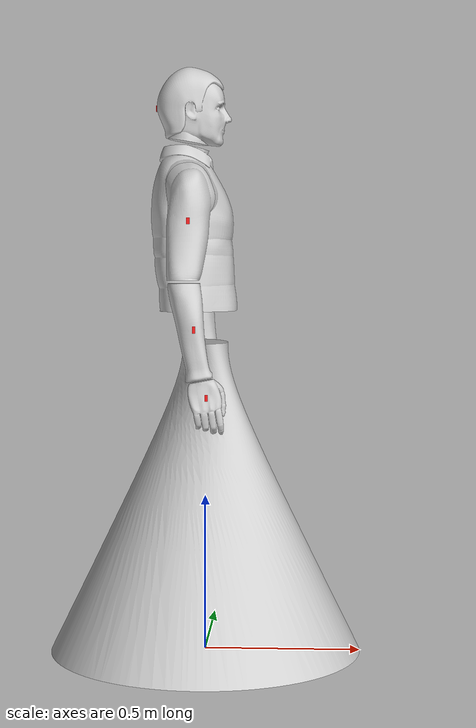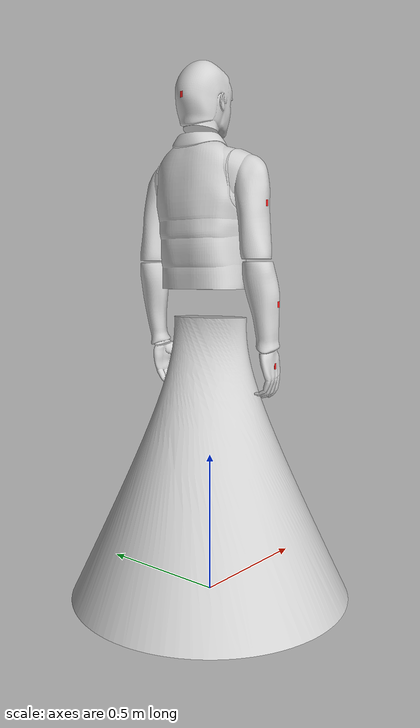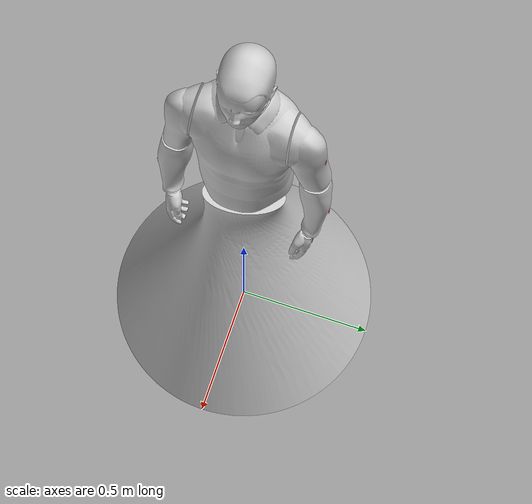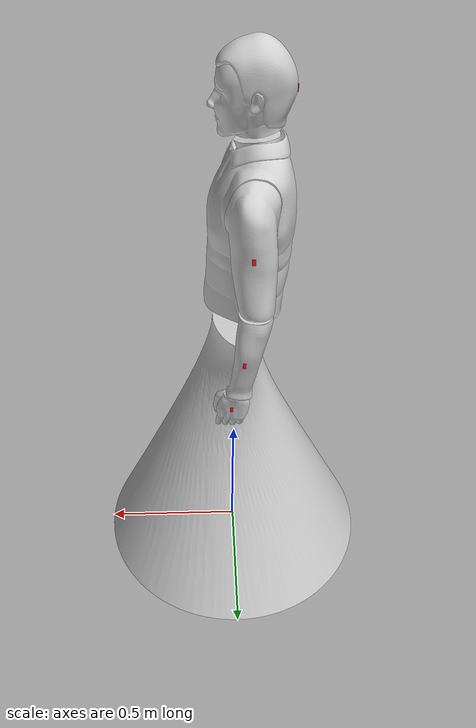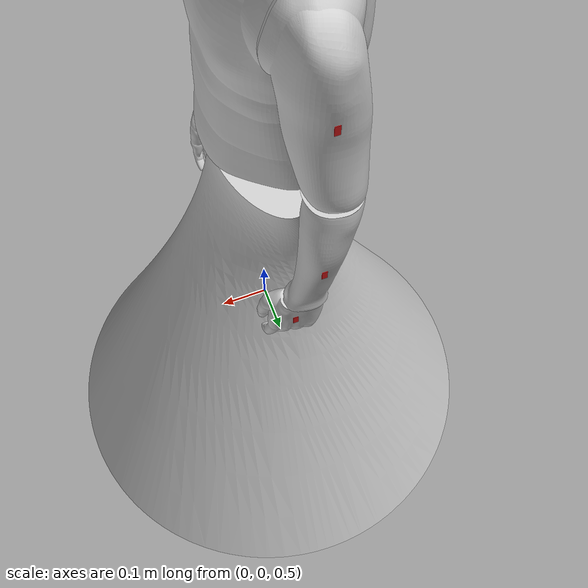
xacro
<?xml version="1.0" ?>

<robot name="human_model" xmlns:xacro="http://www.ros.org/wiki/xacro">

  <link name="world"/>

  <!-- leg_ws to world -->
  <joint name="world_joint" type="fixed">
    <origin xyz="0 0 0" rpy="0 0 0.22"/>
    <parent link="world"/>
    <child link="leg_ws"/>
  </joint>

  <!-- leg_ws link -->
  <link name="leg_ws">
    <collision>
      <origin xyz="0 0 0" rpy="0 0 0"/>
      <geometry>
        <mesh filename="package://human_model/meshes/stl/leg_ws.stl" scale="0.001 0.001 0.001"/>
      </geometry>
    </collision>

    <visual>
      <origin xyz="0 0 0" rpy="0 0 0"/>
      <geometry>
        <mesh filename="package://human_model/meshes/stl/leg_ws.stl" scale="0.001 0.001 0.001"/>
      </geometry>
      <material name="grey"/>
    </visual>

    <inertial>
      <mass value="1"/>
      <inertia ixx="100"  ixy="0"  ixz="0" iyy="100" iyz="0" izz="100" />
    </inertial>
  </link>

  <!-- model to leg_ws -->
  <joint name="leg_joint" type="fixed">
    <origin xyz="-0.035 0 1.1" rpy="0 0 -0.22"/>
    <parent link="leg_ws"/>
    <child link="body"/>
  </joint>

  <!-- model link -->
  <link name="body">
    <collision>
      <origin xyz="0 0 0" rpy="0 0 0"/>
      <geometry>
        <mesh filename="package://human_model/meshes/stl/body.stl" scale="0.001 0.001 0.001"/>
      </geometry>
    </collision>

    <visual>
      <origin xyz="0 0 0" rpy="0 0 0"/>
      <geometry>
        <mesh filename="package://human_model/meshes/stl/body.stl" scale="0.001 0.001 0.001"/>
      </geometry>
      <material name="grey"/>
    </visual>

    <inertial>
      <mass value="1e-5" />
      <origin xyz="0 0 0" rpy="0 0 0"/>
      <inertia ixx="1e-6" ixy="0" ixz="0" iyy="1e-6" iyz="0" izz="1e-6" />
    </inertial>
  </link>

  <!-- =============================  Head  ========================================== -->
  <!-- head to body -->
  <joint name="neck" type="fixed">
    <origin xyz="0 0 0.52" rpy="0 0 0"/>
    <parent link="body"/>
    <child link="head"/>
  </joint>

  <!-- head link -->
  <link name="head">
    <collision>
      <origin xyz="0 0 0" rpy="0 0 0"/>
      <geometry>
        <mesh filename="package://human_model/meshes/stl/head.stl" scale="0.001 0.001 0.001"/>
      </geometry>
    </collision>

    <visual>
      <origin xyz="0 0 0" rpy="0 0 0"/>
      <geometry>
        <mesh filename="package://human_model/meshes/stl/head.stl" scale="0.001 0.001 0.001"/>
      </geometry>
      <material name="grey"/>
    </visual>

    <inertial>
      <mass value="1e-5" />
      <origin xyz="0 0 0" rpy="0 0 0"/>
      <inertia ixx="1e-6" ixy="0" ixz="0" iyy="1e-6" iyz="0" izz="1e-6" />
    </inertial>
  </link>

  <!-- Head IMU -->
  <joint name="imu_head" type="fixed">
    <origin xyz="-0.12 0 0.12" rpy="0 0 0"/>
    <parent link="head"/>
    <child link="head_imu"/>
  </joint>

  <!-- Head IMU -->
  <link name="head_imu">
    <collision>
      <origin xyz="0 0 0" rpy="0 0 0"/>
      <geometry>
          <box size="0.001 0.01 0.02"/>
      </geometry>
    </collision>

    <visual>
      <origin xyz="0 0 0" rpy="0 0 0"/>
      <geometry>
        <box size="0.001 0.01 0.02"/>
      </geometry>
      <material name="red"/>
    </visual>

    <inertial>
      <mass value="0.01"/>
      <origin xyz="0 0 0" rpy="0 0 0"/>
      <inertia
      ixx="0"   ixy="0"   ixz="0"
      iyx="0"   iyy="0"   iyz="0"
      izx="0"   izy="0"   izz="0" />
    </inertial>
  </link>

  <!-- =============================LEFT ARM========================================== -->
  <!-- upper to body -->
  <joint name="left_shoulder" type="fixed">
    <origin xyz="0.015 0.225 0.46" rpy="0 0 0"/>
    <parent link="body"/>
    <child link="left_upper"/>
  </joint>

  <!-- upper link -->
  <link name="left_upper">
    <collision>
      <origin xyz="0 0 0" rpy="0 0 0"/>
      <geometry>
        <mesh filename="package://human_model/meshes/stl/left_upper.stl" scale="0.001 0.001 0.001"/>
      </geometry>
    </collision>

    <visual>
      <origin xyz="0 0 0" rpy="0 0 0"/>
      <geometry>
        <mesh filename="package://human_model/meshes/stl/left_upper.stl" scale="0.001 0.001 0.001"/>
      </geometry>
      <material name="grey"/>
    </visual>

    <inertial>
      <mass value="1e-5" />
      <origin xyz="0 0 0" rpy="0 0 0"/>
      <inertia ixx="1e-6" ixy="0" ixz="0" iyy="1e-6" iyz="0" izz="1e-6" />
    </inertial>
  </link>

  <!-- left_upper IMU -->
  <joint name="imu_left_upper" type="fixed">
    <origin xyz="-0.015 0.037 -0.18" rpy="0 0 0"/>
    <parent link="left_upper"/>
    <child link="left_upper_imu"/>
  </joint>

  <!-- left_upper IMU -->
  <link name="left_upper_imu">
    <collision>
      <origin xyz="0 0 0" rpy="0 0 0"/>
      <geometry>
          <box size="0.01 0.001 0.02"/>
      </geometry>
    </collision>

    <visual>
      <origin xyz="0 0 0" rpy="0 0 0"/>
      <geometry>
        <box size="0.01 0.001 0.02"/>
      </geometry>
      <material name="red"/>
    </visual>

    <inertial>
      <mass value="0.01"/>
      <origin xyz="0 0 0" rpy="0 0 0"/>
      <inertia
      ixx="0"   ixy="0"   ixz="0"
      iyx="0"   iyy="0"   iyz="0"
      izx="0"   izy="0"   izz="0" />
    </inertial>
  </link>

  <!-- lower to upper -->
  <joint name="left_elbow" type="fixed">
    <origin xyz="-0.01 0.015 -0.368" rpy="0 0 0"/>
    <parent link="left_upper"/>
    <child link="left_lower"/>
  </joint>

  <!-- lower link -->
  <link name="left_lower">
    <collision>
      <origin xyz="0 0 0" rpy="0 0 0"/>
      <geometry>
        <mesh filename="package://human_model/meshes/stl/left_lower.stl" scale="0.001 0.001 0.001"/>
      </geometry>
    </collision>

    <visual>
      <origin xyz="0 0 0" rpy="0 0 0"/>
      <geometry>
        <mesh filename="package://human_model/meshes/stl/left_lower.stl" scale="0.001 0.001 0.001"/>
      </geometry>
      <material name="grey"/>
    </visual>

    <inertial>
      <mass value="1e-5" />
      <origin xyz="0 0 0" rpy="0 0 0"/>
      <inertia ixx="1e-6" ixy="0" ixz="0" iyy="1e-6" iyz="0" izz="1e-6" />
    </inertial>
  </link>

  <!-- left_lower IMU -->
  <joint name="imu_left_lower" type="fixed">
    <origin xyz="0.015 0.057 -0.14" rpy="0 0 0"/>
    <parent link="left_lower"/>
    <child link="left_lower_imu"/>
  </joint>

  <!-- left_lower IMU -->
  <link name="left_lower_imu">
    <collision>
      <origin xyz="0 0 0" rpy="0 0 0"/>
      <geometry>
          <box size="0.01 0.001 0.02"/>
      </geometry>
    </collision>

    <visual>
      <origin xyz="0 0 0" rpy="0 0 0"/>
      <geometry>
        <box size="0.01 0.001 0.02"/>
      </geometry>
      <material name="red"/>
    </visual>

    <inertial>
      <mass value="0.01"/>
      <origin xyz="0 0 0" rpy="0 0 0"/>
      <inertia
      ixx="0"   ixy="0"   ixz="0"
      iyx="0"   iyy="0"   iyz="0"
      izx="0"   izy="0"   izz="0" />
    </inertial>
  </link>

  <!-- hand to lower -->
  <joint name="left_wrist" type="fixed">
    <origin xyz="0.05 -0.01 -0.29" rpy="0 0 0"/>
    <parent link="left_lower"/>
    <child link="left_hand"/>
  </joint>

  <!-- hand link -->
  <link name="left_hand">
    <collision>
      <origin xyz="0 0 0" rpy="0 0 0"/>
      <geometry>
        <mesh filename="package://human_model/meshes/stl/left_hand.stl" scale="0.001 0.001 0.001"/>
      </geometry>
    </collision>

    <visual>
      <origin xyz="0 0 0" rpy="0 0 0"/>
      <geometry>
        <mesh filename="package://human_model/meshes/stl/left_hand.stl" scale="0.001 0.001 0.001"/>
      </geometry>
      <material name="grey"/>
    </visual>

    <inertial>
      <mass value="1e-5" />
      <origin xyz="0 0 0" rpy="0 0 0"/>
      <inertia ixx="1e-6" ixy="0" ixz="0" iyy="1e-6" iyz="0" izz="1e-6" />
    </inertial>
  </link>

  <!-- left_hand IMU -->
  <joint name="imu_left_hand" type="fixed">
    <origin xyz="0 0.03 -0.06" rpy="0 0 0"/>
    <parent link="left_hand"/>
    <child link="left_hand_imu"/>
  </joint>

  <!-- left_hand IMU -->
  <link name="left_hand_imu">
    <collision>
      <origin xyz="0 0 0" rpy="0 0 0"/>
      <geometry>
          <box size="0.01 0.001 0.02"/>
      </geometry>
    </collision>

    <visual>
      <origin xyz="0 0 0" rpy="0 0 0"/>
      <geometry>
        <box size="0.01 0.001 0.02"/>
      </geometry>
      <material name="red"/>
    </visual>

    <inertial>
      <mass value="0.01"/>
      <origin xyz="0 0 0" rpy="0 0 0"/>
      <inertia
      ixx="0"   ixy="0"   ixz="0"
      iyx="0"   iyy="0"   iyz="0"
      izx="0"   izy="0"   izz="0" />
    </inertial>
  </link>

  <!-- =============================RIGHT ARM========================================== -->
  <!-- fake -->

  <!-- fake -->

  <!-- upper to body -->
  <joint name="right_shoulder" type="fixed">
    <origin xyz="0.015 -0.225 0.46" rpy="0 0 0"/>
    <parent link="body"/>
    <child link="right_upper"/>
  </joint>

  <!-- upper link -->
  <link name="right_upper">
    <collision>
      <origin xyz="0 0 0" rpy="0 0 0"/>
      <geometry>
        <mesh filename="package://human_model/meshes/stl/right_upper.stl" scale="0.001 0.001 0.001"/>
      </geometry>
    </collision>

    <visual>
      <origin xyz="0 0 0" rpy="0 0 0"/>
      <geometry>
        <mesh filename="package://human_model/meshes/stl/right_upper.stl" scale="0.001 0.001 0.001"/>
      </geometry>
      <material name="grey"/>
    </visual>

    <inertial>
      <mass value="1e-5" />
      <origin xyz="0 0 0" rpy="0 0 0"/>
      <inertia ixx="1e-6" ixy="0" ixz="0" iyy="1e-6" iyz="0" izz="1e-6" />
    </inertial>
  </link>

  <!-- right_upper IMU -->
  <joint name="imu_right_upper" type="fixed">
    <origin xyz="-0.015 -0.037 -0.18" rpy="0 0 0"/>
    <parent link="right_upper"/>
    <child link="right_upper_imu"/>
  </joint>

  <!-- right_upper IMU -->
  <link name="right_upper_imu">
    <collision>
      <origin xyz="0 0 0" rpy="0 0 0"/>
      <geometry>
          <box size="0.01 0.001 0.02"/>
      </geometry>
    </collision>

    <visual>
      <origin xyz="0 0 0" rpy="0 0 0"/>
      <geometry>
        <box size="0.01 0.001 0.02"/>
      </geometry>
      <material name="red"/>
    </visual>

    <inertial>
      <mass value="0.01"/>
      <origin xyz="0 0 0" rpy="0 0 0"/>
      <inertia
      ixx="0"   ixy="0"   ixz="0"
      iyx="0"   iyy="0"   iyz="0"
      izx="0"   izy="0"   izz="0" />
    </inertial>
  </link>

  <!-- lower to upper -->
  <joint name="right_elbow" type="fixed">
    <origin xyz="-0.01 -0.015 -0.368" rpy="0 0 0"/>
    <parent link="right_upper"/>
    <child link="right_lower"/>
  </joint>

  <!-- lower link -->
  <link name="right_lower">
    <collision>
      <origin xyz="0 0 0" rpy="0 0 0"/>
      <geometry>
        <mesh filename="package://human_model/meshes/stl/right_lower.stl" scale="0.001 0.001 0.001"/>
      </geometry>
    </collision>

    <visual>
      <origin xyz="0 0 0" rpy="0 0 0"/>
      <geometry>
        <mesh filename="package://human_model/meshes/stl/right_lower.stl" scale="0.001 0.001 0.001"/>
      </geometry>
      <material name="grey"/>
    </visual>

    <inertial>
      <mass value="1e-5" />
      <origin xyz="0 0 0" rpy="0 0 0"/>
      <inertia ixx="1e-6" ixy="0" ixz="0" iyy="1e-6" iyz="0" izz="1e-6" />
    </inertial>
  </link>

  <!-- right_lower IMU -->
  <joint name="imu_right_lower" type="fixed">
    <origin xyz="0.015 -0.057 -0.14" rpy="0 0 0"/>
    <parent link="right_lower"/>
    <child link="right_lower_imu"/>
  </joint>

  <!-- right_lower IMU -->
  <link name="right_lower_imu">
    <collision>
      <origin xyz="0 0 0" rpy="0 0 0"/>
      <geometry>
          <box size="0.01 0.001 0.02"/>
      </geometry>
    </collision>

    <visual>
      <origin xyz="0 0 0" rpy="0 0 0"/>
      <geometry>
        <box size="0.01 0.001 0.02"/>
      </geometry>
      <material name="red"/>
    </visual>

    <inertial>
      <mass value="0.01"/>
      <origin xyz="0 0 0" rpy="0 0 0"/>
      <inertia
      ixx="0"   ixy="0"   ixz="0"
      iyx="0"   iyy="0"   iyz="0"
      izx="0"   izy="0"   izz="0" />
    </inertial>
  </link>

  <!-- hand to lower -->
  <joint name="right_wrist" type="fixed">
    <origin xyz="0.05 0.01 -0.29" rpy="0 0 0"/>
    <parent link="right_lower"/>
    <child link="right_hand"/>
  </joint>

  <!-- hand link -->
  <link name="right_hand">
    <collision>
      <origin xyz="0 0 0" rpy="0 0 0"/>
      <geometry>
        <mesh filename="package://human_model/meshes/stl/right_hand.stl" scale="0.001 0.001 0.001"/>
      </geometry>
    </collision>

    <visual>
      <origin xyz="0 0 0" rpy="0 0 0"/>
      <geometry>
        <mesh filename="package://human_model/meshes/stl/right_hand.stl" scale="0.001 0.001 0.001"/>
      </geometry>
      <material name="grey"/>
    </visual>

    <inertial>
      <mass value="1e-5" />
      <origin xyz="0 0 0" rpy="0 0 0"/>
      <inertia ixx="1e-6" ixy="0" ixz="0" iyy="1e-6" iyz="0" izz="1e-6" />
    </inertial>
  </link>

  <!-- right_hand IMU -->
  <joint name="imu_right_hand" type="fixed">
    <origin xyz="0 -0.032 -0.06" rpy="0 0 0"/>
    <parent link="right_hand"/>
    <child link="right_hand_imu"/>
  </joint>

  <!-- right_hand IMU -->
  <link name="right_hand_imu">
    <collision>
      <origin xyz="0 0 0" rpy="0 0 0"/>
      <geometry>
          <box size="0.01 0.001 0.02"/>
      </geometry>
    </collision>

    <visual>
      <origin xyz="0 0 0" rpy="0 0 0"/>
      <geometry>
        <box size="0.01 0.001 0.02"/>
      </geometry>
      <material name="red"/>
    </visual>

    <inertial>
      <mass value="0.01"/>
      <origin xyz="0 0 0" rpy="0 0 0"/>
      <inertia
      ixx="0"   ixy="0"   ixz="0"
      iyx="0"   iyy="0"   iyz="0"
      izx="0"   izy="0"   izz="0" />
    </inertial>
  </link>

  <!-- =============================  Gazebo  ========================================== -->
  <!-- Gazebo Plugins -->
  <gazebo reference="head_imu">
    <gravity>true</gravity>
    <sensor name="imu_sensor" type="imu">
      <always_on>true</always_on>
      <update_rate>100</update_rate>
      <visualize>true</visualize>
      <topic>__default_topic__</topic>
      <plugin filename="libgazebo_ros_imu_sensor.so" name="imu_plugin">
        <topicName>head_imu</topicName>
        <bodyName>head_imu</bodyName>
        <updateRateHZ>10.0</updateRateHZ>
        <gaussianNoise>0.0</gaussianNoise>
        <xyzOffset>0 0 0</xyzOffset>
        <rpyOffset>0 0 0</rpyOffset>
        <frameName>head_imu</frameName>
      </plugin>
      <pose>0 0 0 0 0 0</pose>
    </sensor>
  </gazebo>

  <gazebo reference="left_upper_imu">
    <gravity>true</gravity>
    <sensor name="imu_sensor" type="imu">
      <always_on>true</always_on>
      <update_rate>100</update_rate>
      <visualize>true</visualize>
      <topic>__default_topic__</topic>
      <plugin filename="libgazebo_ros_imu_sensor.so" name="imu_plugin">
        <topicName>left_upper_imu</topicName>
        <bodyName>left_upper_imu</bodyName>
        <updateRateHZ>10.0</updateRateHZ>
        <gaussianNoise>0.0</gaussianNoise>
        <xyzOffset>0 0 0</xyzOffset>
        <rpyOffset>0 0 0</rpyOffset>
        <frameName>left_upper_imu</frameName>
      </plugin>
      <pose>0 0 0 0 0 0</pose>
    </sensor>
  </gazebo>

  <gazebo reference="left_lower_imu">
    <gravity>true</gravity>
    <sensor name="imu_sensor" type="imu">
      <always_on>true</always_on>
      <update_rate>100</update_rate>
      <visualize>true</visualize>
      <topic>__default_topic__</topic>
      <plugin filename="libgazebo_ros_imu_sensor.so" name="imu_plugin">
        <topicName>left_lower_imu</topicName>
        <bodyName>left_lower_imu</bodyName>
        <updateRateHZ>10.0</updateRateHZ>
        <gaussianNoise>0.0</gaussianNoise>
        <xyzOffset>0 0 0</xyzOffset>
        <rpyOffset>0 0 0</rpyOffset>
        <frameName>left_lower_imu</frameName>
      </plugin>
      <pose>0 0 0 0 0 0</pose>
    </sensor>
  </gazebo>

  <gazebo reference="left_hand_imu">
    <gravity>true</gravity>
    <sensor name="imu_sensor" type="imu">
      <always_on>true</always_on>
      <update_rate>100</update_rate>
      <visualize>true</visualize>
      <topic>__default_topic__</topic>
      <plugin filename="libgazebo_ros_imu_sensor.so" name="imu_plugin">
        <topicName>left_hand_imu</topicName>
        <bodyName>left_hand_imu</bodyName>
        <updateRateHZ>10.0</updateRateHZ>
        <gaussianNoise>0.0</gaussianNoise>
        <xyzOffset>0 0 0</xyzOffset>
        <rpyOffset>0 0 0</rpyOffset>
        <frameName>left_hand_imu</frameName>
      </plugin>
      <pose>0 0 0 0 0 0</pose>
    </sensor>
  </gazebo>

  <gazebo reference="right_upper_imu">
    <gravity>true</gravity>
    <sensor name="imu_sensor" type="imu">
      <always_on>true</always_on>
      <update_rate>100</update_rate>
      <visualize>true</visualize>
      <topic>__default_topic__</topic>
      <plugin filename="libgazebo_ros_imu_sensor.so" name="imu_plugin">
        <topicName>right_upper_imu</topicName>
        <bodyName>right_upper_imu</bodyName>
        <updateRateHZ>10.0</updateRateHZ>
        <gaussianNoise>0.0</gaussianNoise>
        <xyzOffset>0 0 0</xyzOffset>
        <rpyOffset>0 0 0</rpyOffset>
        <frameName>right_upper_imu</frameName>
      </plugin>
      <pose>0 0 0 0 0 0</pose>
    </sensor>
  </gazebo>

  <gazebo reference="right_lower_imu">
    <gravity>true</gravity>
    <sensor name="imu_sensor" type="imu">
      <always_on>true</always_on>
      <update_rate>100</update_rate>
      <visualize>true</visualize>
      <topic>__default_topic__</topic>
      <plugin filename="libgazebo_ros_imu_sensor.so" name="imu_plugin">
        <topicName>right_lower_imu</topicName>
        <bodyName>right_lower_imu</bodyName>
        <updateRateHZ>10.0</updateRateHZ>
        <gaussianNoise>0.0</gaussianNoise>
        <xyzOffset>0 0 0</xyzOffset>
        <rpyOffset>0 0 0</rpyOffset>
        <frameName>right_lower_imu</frameName>
      </plugin>
      <pose>0 0 0 0 0 0</pose>
    </sensor>
  </gazebo>

  <gazebo reference="right_hand_imu">
    <gravity>true</gravity>
    <sensor name="imu_sensor" type="imu">
      <always_on>true</always_on>
      <update_rate>100</update_rate>
      <visualize>true</visualize>
      <topic>__default_topic__</topic>
      <plugin filename="libgazebo_ros_imu_sensor.so" name="imu_plugin">
        <topicName>right_hand_imu</topicName>
        <bodyName>right_hand_imu</bodyName>
        <updateRateHZ>10.0</updateRateHZ>
        <gaussianNoise>0.0</gaussianNoise>
        <xyzOffset>0 0 0</xyzOffset>
        <rpyOffset>0 0 0</rpyOffset>
        <frameName>right_hand_imu</frameName>
      </plugin>
      <pose>0 0 0 0 0 0</pose>
    </sensor>
  </gazebo>

  <!-- =============================  Colors  ========================================== -->
  <material name="blue">
    <color rgba="0.1 0.1 0.9 1"/>
  </material>

  <material name="grey">
    <color rgba="0.8 0.8 0.8 1"/>
  </material>

  <material name="red">
    <color rgba="0.9 0.1 0.1 1"/>
  </material>

  <material name="green">
    <color rgba="0.2 0.9 0.2 1"/>
  </material>

</robot>
